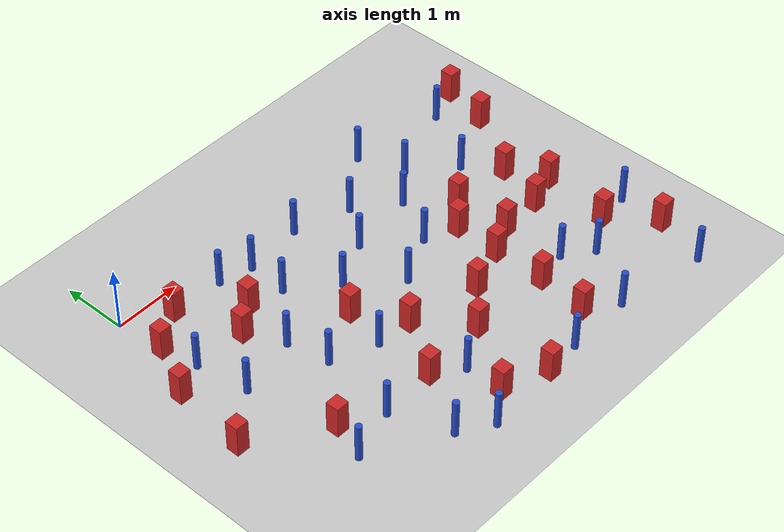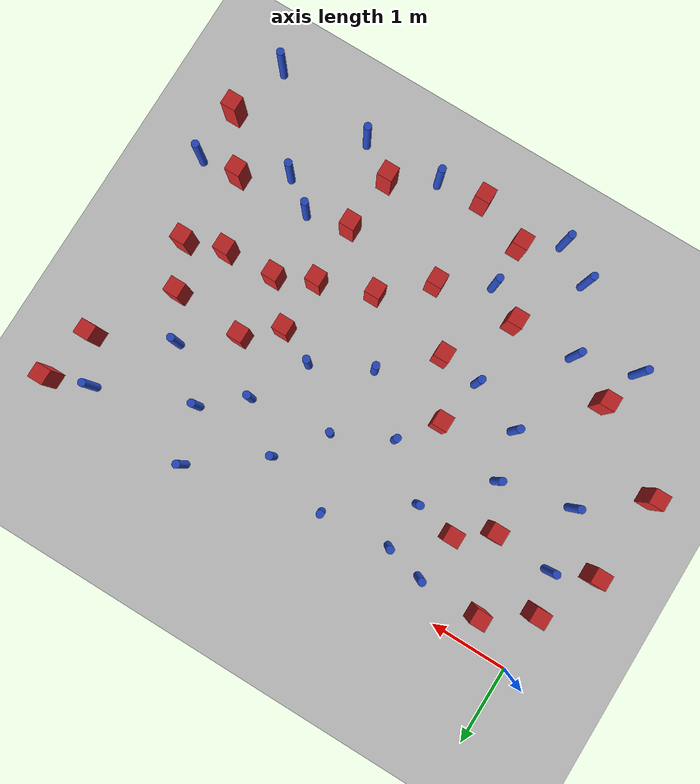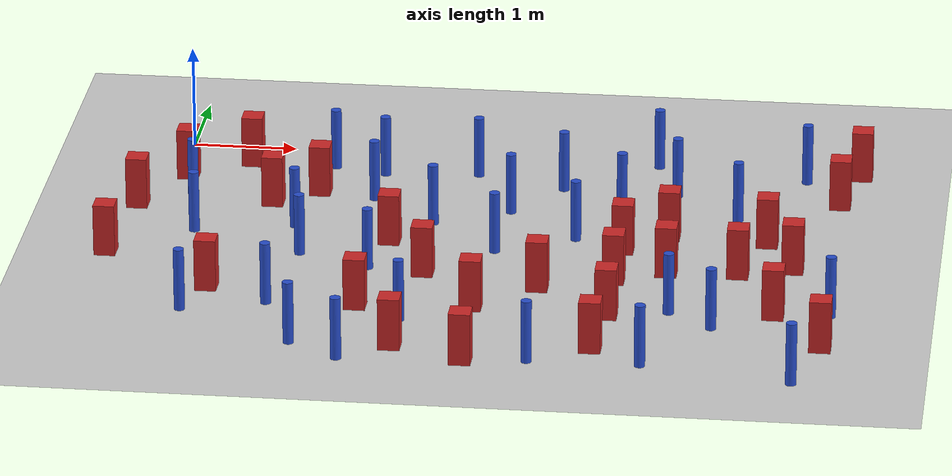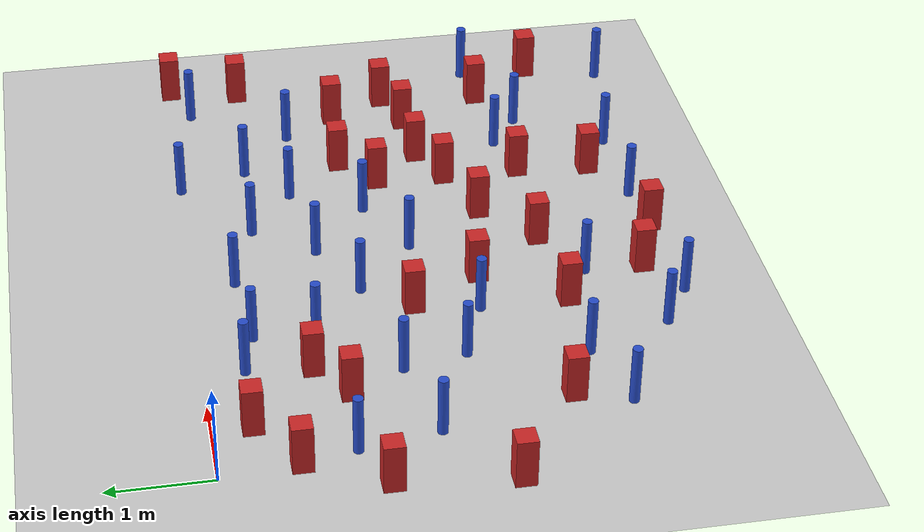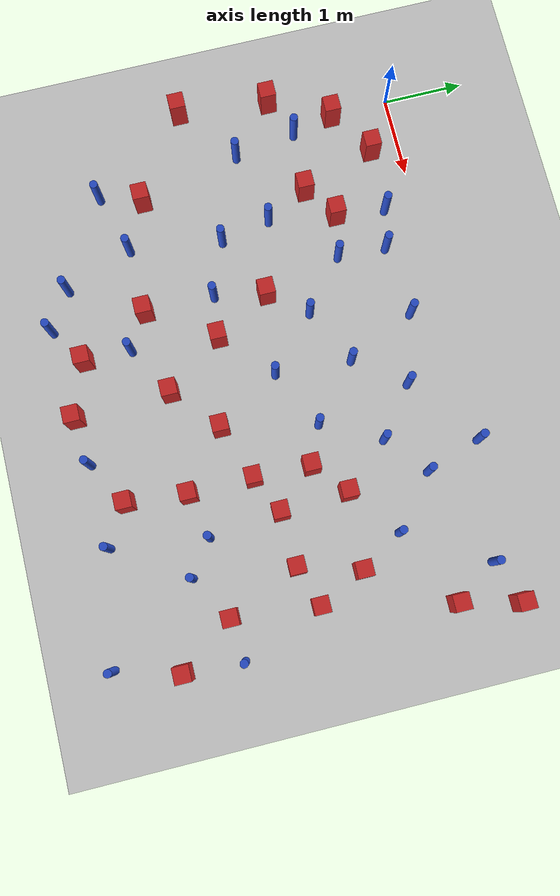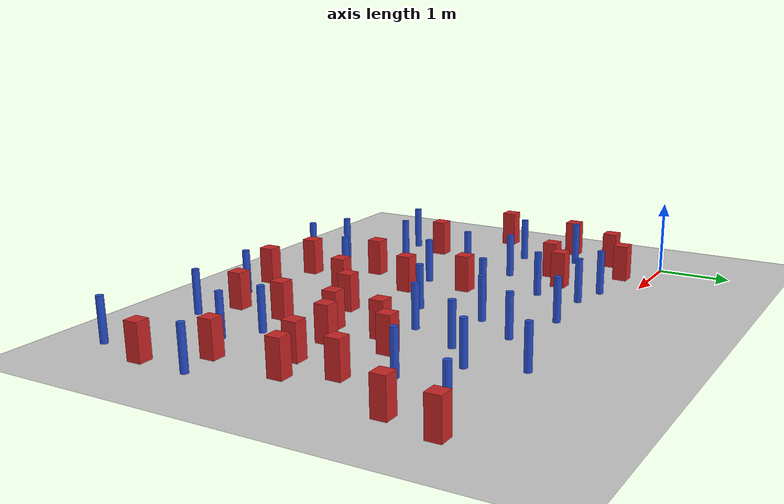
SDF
<sdf version="1.6">
 <world name="default">
  <model name="ground_plane">
   <static>1</static>
   <link name="link">
    <collision name="collision">
     <geometry><plane><normal>0 0 1</normal><size>100 100</size></plane></geometry>
     <surface><friction><ode><mu>100</mu><mu2>50</mu2></ode></friction></surface>
    </collision>
    <visual name="visual">
     <cast_shadows>0</cast_shadows>
     <geometry><plane><normal>0 0 1</normal><size>100 100</size></plane></geometry>
     <material>
      <ambient>1.0 1.0 1.0 1.0</ambient>
      <diffuse>0.8 0.8 0.8 1.0</diffuse>
      <specular>0.01 0.01 0.01 1.000000</specular>
     </material>
    </visual>
   </link>
  </model>
  <model name="NamedLocations">
   <static>true</static>
   <link name="DefaultStart"><pose>8.5 0 0 0 0 3.14</pose></link>
  </model>
  <model name="pole_obstacle2">
   <static>true</static>
   <pose>4.7720172906 -0.747344427278 7.38925637345e-09 -8.47170692799e-08 1.24976765038e-08 -1.74513093018e-07</pose>
   <link name="link">
    <pose>0 0 0.3 0 -0 0</pose>
    <inertial>
     <mass>1</mass>
     <inertia><ixx>0.145833</ixx><ixy>0</ixy><ixz>0</ixz><iyy>0.145833</iyy><iyz>0</iyz><izz>0.125</izz></inertia>
    </inertial>
    <collision name="collision">
     <geometry><cylinder><radius>0.05</radius><length>.6</length></cylinder></geometry>
    </collision>
    <visual name="visual">
     <geometry><cylinder><radius>0.05</radius><length>.6</length></cylinder></geometry>
     <material>
      <script><name>Gazebo/Blue</name><uri>file://media/materials/scripts/gazebo.material</uri></script>
     </material>
    </visual>
   </link>
  </model>
  <model name="square_post_obstacle18">
   <static>true</static>
   <pose>0.964357316819 -1.32385810969 1.91545236811e-07 -7.35059704564e-06 1.12565212e-07 2.39332434364e-05</pose>
   <link name="link">
    <pose>0 0 0.25 0 -0 0</pose>
    <inertial>
     <mass>100</mass>
     <inertia>
      <ixx>0.166667</ixx>
      <ixy>0</ixy>
      <ixz>0</ixz>
      <iyy>0.166667</iyy>
      <iyz>0</iyz>
      <izz>0.166667</izz>
     </inertia>
    </inertial>
    <collision name="collision"><geometry><box><size>.2 .2 .5</size></box></geometry></collision>
    <visual name="visual">
     <geometry><box><size>.2 .2 .5</size></box></geometry>
     <material>
      <script><name>Gazebo/Red</name><uri>file://media/materials/scripts/gazebo.material</uri></script>
     </material>
    </visual>
   </link>
  </model>
  <model name="square_post_obstacle19">
   <static>true</static>
   <pose>2.04800696063 -3.61474034839 1.91545236811e-07 -7.35059704564e-06 1.12565212e-07 2.39332434364e-05</pose>
   <link name="link">
    <pose>0 0 0.25 0 -0 0</pose>
    <inertial>
     <mass>100</mass>
     <inertia>
      <ixx>0.166667</ixx>
      <ixy>0</ixy>
      <ixz>0</ixz>
      <iyy>0.166667</iyy>
      <iyz>0</iyz>
      <izz>0.166667</izz>
     </inertia>
    </inertial>
    <collision name="collision"><geometry><box><size>.2 .2 .5</size></box></geometry></collision>
    <visual name="visual">
     <geometry><box><size>.2 .2 .5</size></box></geometry>
     <material>
      <script><name>Gazebo/Red</name><uri>file://media/materials/scripts/gazebo.material</uri></script>
     </material>
    </visual>
   </link>
  </model>
  <model name="pole_obstacle13">
   <static>true</static>
   <pose>4.75919211775 -4.63325182389 7.38925637345e-09 -8.47170692796e-08 1.24976764786e-08 -1.74513093032e-07</pose>
   <link name="link">
    <pose>0 0 0.3 0 -0 0</pose>
    <inertial>
     <mass>1</mass>
     <inertia><ixx>0.145833</ixx><ixy>0</ixy><ixz>0</ixz><iyy>0.145833</iyy><iyz>0</iyz><izz>0.125</izz></inertia>
    </inertial>
    <collision name="collision">
     <geometry><cylinder><radius>0.05</radius><length>.6</length></cylinder></geometry>
    </collision>
    <visual name="visual">
     <geometry><cylinder><radius>0.05</radius><length>.6</length></cylinder></geometry>
     <material>
      <script><name>Gazebo/Blue</name><uri>file://media/materials/scripts/gazebo.material</uri></script>
     </material>
    </visual>
   </link>
  </model>
  <model name="square_post_obstacle26">
   <static>true</static>
   <pose>4.37403866077 -2.09080189724 1.91545236811e-07 -7.35059704564e-06 1.12565212e-07 2.39332434364e-05</pose>
   <link name="link">
    <pose>0 0 0.25 0 -0 0</pose>
    <inertial>
     <mass>100</mass>
     <inertia>
      <ixx>0.166667</ixx>
      <ixy>0</ixy>
      <ixz>0</ixz>
      <iyy>0.166667</iyy>
      <iyz>0</iyz>
      <izz>0.166667</izz>
     </inertia>
    </inertial>
    <collision name="collision"><geometry><box><size>.2 .2 .5</size></box></geometry></collision>
    <visual name="visual">
     <geometry><box><size>.2 .2 .5</size></box></geometry>
     <material>
      <script><name>Gazebo/Red</name><uri>file://media/materials/scripts/gazebo.material</uri></script>
     </material>
    </visual>
   </link>
  </model>
  <model name="square_post_obstacle30">
   <static>true</static>
   <pose>3.66635060413 -3.0341679923 1.91545236811e-07 -7.35059704564e-06 1.12565212e-07 2.39332434364e-05</pose>
   <link name="link">
    <pose>0 0 0.25 0 -0 0</pose>
    <inertial>
     <mass>100</mass>
     <inertia>
      <ixx>0.166667</ixx>
      <ixy>0</ixy>
      <ixz>0</ixz>
      <iyy>0.166667</iyy>
      <iyz>0</iyz>
      <izz>0.166667</izz>
     </inertia>
    </inertial>
    <collision name="collision"><geometry><box><size>.2 .2 .5</size></box></geometry></collision>
    <visual name="visual">
     <geometry><box><size>.2 .2 .5</size></box></geometry>
     <material>
      <script><name>Gazebo/Red</name><uri>file://media/materials/scripts/gazebo.material</uri></script>
     </material>
    </visual>
   </link>
  </model>
  <model name="pole_obstacle24">
   <static>true</static>
   <pose>3.23512603943 -1.30030228851 7.38925637345e-09 -8.471706928e-08 1.24976765152e-08 -1.74513093012e-07</pose>
   <link name="link">
    <pose>0 0 0.3 0 -0 0</pose>
    <inertial>
     <mass>1</mass>
     <inertia><ixx>0.145833</ixx><ixy>0</ixy><ixz>0</ixz><iyy>0.145833</iyy><iyz>0</iyz><izz>0.125</izz></inertia>
    </inertial>
    <collision name="collision">
     <geometry><cylinder><radius>0.05</radius><length>.6</length></cylinder></geometry>
    </collision>
    <visual name="visual">
     <geometry><cylinder><radius>0.05</radius><length>.6</length></cylinder></geometry>
     <material>
      <script><name>Gazebo/Blue</name><uri>file://media/materials/scripts/gazebo.material</uri></script>
     </material>
    </visual>
   </link>
  </model>
  <model name="pole_obstacle28">
   <static>true</static>
   <pose>1.93992429801 -0.521464365746 7.38925637345e-09 -8.47170692799e-08 1.24976765025e-08 -1.7451309302e-07</pose>
   <link name="link">
    <pose>0 0 0.3 0 -0 0</pose>
    <inertial>
     <mass>1</mass>
     <inertia><ixx>0.145833</ixx><ixy>0</ixy><ixz>0</ixz><iyy>0.145833</iyy><iyz>0</iyz><izz>0.125</izz></inertia>
    </inertial>
    <collision name="collision">
     <geometry><cylinder><radius>0.05</radius><length>.6</length></cylinder></geometry>
    </collision>
    <visual name="visual">
     <geometry><cylinder><radius>0.05</radius><length>.6</length></cylinder></geometry>
     <material>
      <script><name>Gazebo/Blue</name><uri>file://media/materials/scripts/gazebo.material</uri></script>
     </material>
    </visual>
   </link>
  </model>
  <model name="pole_obstacle29">
   <static>true</static>
   <pose>4.54024770838 -0.0614393843138 7.38925637345e-09 -8.47170692799e-08 1.24976765036e-08 -1.7451309302e-07</pose>
   <link name="link">
    <pose>0 0 0.3 0 -0 0</pose>
    <inertial>
     <mass>1</mass>
     <inertia><ixx>0.145833</ixx><ixy>0</ixy><ixz>0</ixz><iyy>0.145833</iyy><iyz>0</iyz><izz>0.125</izz></inertia>
    </inertial>
    <collision name="collision">
     <geometry><cylinder><radius>0.05</radius><length>.6</length></cylinder></geometry>
    </collision>
    <visual name="visual">
     <geometry><cylinder><radius>0.05</radius><length>.6</length></cylinder></geometry>
     <material>
      <script><name>Gazebo/Blue</name><uri>file://media/materials/scripts/gazebo.material</uri></script>
     </material>
    </visual>
   </link>
  </model>
  <model name="pole_obstacle32">
   <static>true</static>
   <pose>5.33008297915 -3.7586670576 7.38925637345e-09 -8.47170692798e-08 1.24976764937e-08 -1.74513093023e-07</pose>
   <link name="link">
    <pose>0 0 0.3 0 -0 0</pose>
    <inertial>
     <mass>1</mass>
     <inertia><ixx>0.145833</ixx><ixy>0</ixy><ixz>0</ixz><iyy>0.145833</iyy><iyz>0</iyz><izz>0.125</izz></inertia>
    </inertial>
    <collision name="collision">
     <geometry><cylinder><radius>0.05</radius><length>.6</length></cylinder></geometry>
    </collision>
    <visual name="visual">
     <geometry><cylinder><radius>0.05</radius><length>.6</length></cylinder></geometry>
     <material>
      <script><name>Gazebo/Blue</name><uri>file://media/materials/scripts/gazebo.material</uri></script>
     </material>
    </visual>
   </link>
  </model>
  <model name="pole_obstacle38">
   <static>true</static>
   <pose>2.02434232337 -4.7736321832 7.38925637345e-09 -8.47170692799e-08 1.24976765014e-08 -1.7451309302e-07</pose>
   <link name="link">
    <pose>0 0 0.3 0 -0 0</pose>
    <inertial>
     <mass>1</mass>
     <inertia><ixx>0.145833</ixx><ixy>0</ixy><ixz>0</ixz><iyy>0.145833</iyy><iyz>0</iyz><izz>0.125</izz></inertia>
    </inertial>
    <collision name="collision">
     <geometry><cylinder><radius>0.05</radius><length>.6</length></cylinder></geometry>
    </collision>
    <visual name="visual">
     <geometry><cylinder><radius>0.05</radius><length>.6</length></cylinder></geometry>
     <material>
      <script><name>Gazebo/Blue</name><uri>file://media/materials/scripts/gazebo.material</uri></script>
     </material>
    </visual>
   </link>
  </model>
  <model name="pole_obstacle42">
   <static>true</static>
   <pose>0.456989577449 -3.85813906837 7.38925637345e-09 -8.471706928e-08 1.24976765089e-08 -1.74513093016e-07</pose>
   <link name="link">
    <pose>0 0 0.3 0 -0 0</pose>
    <inertial>
     <mass>1</mass>
     <inertia><ixx>0.145833</ixx><ixy>0</ixy><ixz>0</ixz><iyy>0.145833</iyy><iyz>0</iyz><izz>0.125</izz></inertia>
    </inertial>
    <collision name="collision">
     <geometry><cylinder><radius>0.05</radius><length>.6</length></cylinder></geometry>
    </collision>
    <visual name="visual">
     <geometry><cylinder><radius>0.05</radius><length>.6</length></cylinder></geometry>
     <material>
      <script><name>Gazebo/Blue</name><uri>file://media/materials/scripts/gazebo.material</uri></script>
     </material>
    </visual>
   </link>
  </model>
  <model name="pole_obstacle47">
   <static>true</static>
   <pose>3.68034319505 -0.705572303141 7.38925637345e-09 -8.471706928e-08 1.24976765177e-08 -1.74513093012e-07</pose>
   <link name="link">
    <pose>0 0 0.3 0 -0 0</pose>
    <inertial>
     <mass>1</mass>
     <inertia><ixx>0.145833</ixx><ixy>0</ixy><ixz>0</ixz><iyy>0.145833</iyy><iyz>0</iyz><izz>0.125</izz></inertia>
    </inertial>
    <collision name="collision">
     <geometry><cylinder><radius>0.05</radius><length>.6</length></cylinder></geometry>
    </collision>
    <visual name="visual">
     <geometry><cylinder><radius>0.05</radius><length>.6</length></cylinder></geometry>
     <material>
      <script><name>Gazebo/Blue</name><uri>file://media/materials/scripts/gazebo.material</uri></script>
     </material>
    </visual>
   </link>
  </model>
  <model name="square_post_obstacle49">
   <static>true</static>
   <pose>5.48485949654 -2.54299438803 1.91545236811e-07 -7.35059704564e-06 1.12565212e-07 2.39332434364e-05</pose>
   <link name="link">
    <pose>0 0 0.25 0 -0 0</pose>
    <inertial>
     <mass>100</mass>
     <inertia>
      <ixx>0.166667</ixx>
      <ixy>0</ixy>
      <ixz>0</ixz>
      <iyy>0.166667</iyy>
      <iyz>0</iyz>
      <izz>0.166667</izz>
     </inertia>
    </inertial>
    <collision name="collision"><geometry><box><size>.2 .2 .5</size></box></geometry></collision>
    <visual name="visual">
     <geometry><box><size>.2 .2 .5</size></box></geometry>
     <material>
      <script><name>Gazebo/Red</name><uri>file://media/materials/scripts/gazebo.material</uri></script>
     </material>
    </visual>
   </link>
  </model>
  <model name="pole_obstacle53">
   <static>true</static>
   <pose>1.91021200987 -1.12741081636 7.38925637345e-09 -8.471706928e-08 1.24976765079e-08 -1.74513093017e-07</pose>
   <link name="link">
    <pose>0 0 0.3 0 -0 0</pose>
    <inertial>
     <mass>1</mass>
     <inertia><ixx>0.145833</ixx><ixy>0</ixy><ixz>0</ixz><iyy>0.145833</iyy><iyz>0</iyz><izz>0.125</izz></inertia>
    </inertial>
    <collision name="collision">
     <geometry><cylinder><radius>0.05</radius><length>.6</length></cylinder></geometry>
    </collision>
    <visual name="visual">
     <geometry><cylinder><radius>0.05</radius><length>.6</length></cylinder></geometry>
     <material>
      <script><name>Gazebo/Blue</name><uri>file://media/materials/scripts/gazebo.material</uri></script>
     </material>
    </visual>
   </link>
  </model>
  <model name="square_post_obstacle57">
   <static>true</static>
   <pose>4.77906707636 -1.7390245978 1.91545236811e-07 -7.35059704564e-06 1.12565212e-07 2.39332434364e-05</pose>
   <link name="link">
    <pose>0 0 0.25 0 -0 0</pose>
    <inertial>
     <mass>100</mass>
     <inertia>
      <ixx>0.166667</ixx>
      <ixy>0</ixy>
      <ixz>0</ixz>
      <iyy>0.166667</iyy>
      <iyz>0</iyz>
      <izz>0.166667</izz>
     </inertia>
    </inertial>
    <collision name="collision"><geometry><box><size>.2 .2 .5</size></box></geometry></collision>
    <visual name="visual">
     <geometry><box><size>.2 .2 .5</size></box></geometry>
     <material>
      <script><name>Gazebo/Red</name><uri>file://media/materials/scripts/gazebo.material</uri></script>
     </material>
    </visual>
   </link>
  </model>
  <model name="pole_obstacle55">
   <static>true</static>
   <pose>0.315749615218 -2.05587042817 7.38925637345e-09 -8.471706928e-08 1.24976765084e-08 -1.74513093017e-07</pose>
   <link name="link">
    <pose>0 0 0.3 0 -0 0</pose>
    <inertial>
     <mass>1</mass>
     <inertia><ixx>0.145833</ixx><ixy>0</ixy><ixz>0</ixz><iyy>0.145833</iyy><iyz>0</iyz><izz>0.125</izz></inertia>
    </inertial>
    <collision name="collision">
     <geometry><cylinder><radius>0.05</radius><length>.6</length></cylinder></geometry>
    </collision>
    <visual name="visual">
     <geometry><cylinder><radius>0.05</radius><length>.6</length></cylinder></geometry>
     <material>
      <script><name>Gazebo/Blue</name><uri>file://media/materials/scripts/gazebo.material</uri></script>
     </material>
    </visual>
   </link>
  </model>
  <model name="pole_obstacle56">
   <static>true</static>
   <pose>4.91783295922 -3.45816754562 7.38925637345e-09 -8.47170692798e-08 1.24976764937e-08 -1.74513093023e-07</pose>
   <link name="link">
    <pose>0 0 0.3 0 -0 0</pose>
    <inertial>
     <mass>1</mass>
     <inertia><ixx>0.145833</ixx><ixy>0</ixy><ixz>0</ixz><iyy>0.145833</iyy><iyz>0</iyz><izz>0.125</izz></inertia>
    </inertial>
    <collision name="collision">
     <geometry><cylinder><radius>0.05</radius><length>.6</length></cylinder></geometry>
    </collision>
    <visual name="visual">
     <geometry><cylinder><radius>0.05</radius><length>.6</length></cylinder></geometry>
     <material>
      <script><name>Gazebo/Blue</name><uri>file://media/materials/scripts/gazebo.material</uri></script>
     </material>
    </visual>
   </link>
  </model>
  <model name="square_post_obstacle63">
   <static>true</static>
   <pose>5.87396929325 -3.42659135296 1.91545236811e-07 -7.35059704564e-06 1.12565212e-07 2.39332434364e-05</pose>
   <link name="link">
    <pose>0 0 0.25 0 -0 0</pose>
    <inertial>
     <mass>100</mass>
     <inertia>
      <ixx>0.166667</ixx>
      <ixy>0</ixy>
      <ixz>0</ixz>
      <iyy>0.166667</iyy>
      <iyz>0</iyz>
      <izz>0.166667</izz>
     </inertia>
    </inertial>
    <collision name="collision"><geometry><box><size>.2 .2 .5</size></box></geometry></collision>
    <visual name="visual">
     <geometry><box><size>.2 .2 .5</size></box></geometry>
     <material>
      <script><name>Gazebo/Red</name><uri>file://media/materials/scripts/gazebo.material</uri></script>
     </material>
    </visual>
   </link>
  </model>
  <model name="pole_obstacle61">
   <static>true</static>
   <pose>6.136204802 -4.8713466097 7.38925637345e-09 -8.47170692796e-08 1.24976764786e-08 -1.74513093032e-07</pose>
   <link name="link">
    <pose>0 0 0.3 0 -0 0</pose>
    <inertial>
     <mass>1</mass>
     <inertia><ixx>0.145833</ixx><ixy>0</ixy><ixz>0</ixz><iyy>0.145833</iyy><iyz>0</iyz><izz>0.125</izz></inertia>
    </inertial>
    <collision name="collision">
     <geometry><cylinder><radius>0.05</radius><length>.6</length></cylinder></geometry>
    </collision>
    <visual name="visual">
     <geometry><cylinder><radius>0.05</radius><length>.6</length></cylinder></geometry>
     <material>
      <script><name>Gazebo/Blue</name><uri>file://media/materials/scripts/gazebo.material</uri></script>
     </material>
    </visual>
   </link>
  </model>
  <model name="square_post_obstacle64">
   <static>true</static>
   <pose>3.14669188082 -4.71209867936 1.91545236811e-07 -7.35059704564e-06 1.12565212e-07 2.39332434364e-05</pose>
   <link name="link">
    <pose>0 0 0.25 0 -0 0</pose>
    <inertial>
     <mass>100</mass>
     <inertia>
      <ixx>0.166667</ixx>
      <ixy>0</ixy>
      <ixz>0</ixz>
      <iyy>0.166667</iyy>
      <iyz>0</iyz>
      <izz>0.166667</izz>
     </inertia>
    </inertial>
    <collision name="collision"><geometry><box><size>.2 .2 .5</size></box></geometry></collision>
    <visual name="visual">
     <geometry><box><size>.2 .2 .5</size></box></geometry>
     <material>
      <script><name>Gazebo/Red</name><uri>file://media/materials/scripts/gazebo.material</uri></script>
     </material>
    </visual>
   </link>
  </model>
  <model name="square_post_obstacle66">
   <static>true</static>
   <pose>5.98414200964 -2.37964871967 1.91545236811e-07 -7.35059704564e-06 1.12565212e-07 2.39332434364e-05</pose>
   <link name="link">
    <pose>0 0 0.25 0 -0 0</pose>
    <inertial>
     <mass>100</mass>
     <inertia>
      <ixx>0.166667</ixx>
      <ixy>0</ixy>
      <ixz>0</ixz>
      <iyy>0.166667</iyy>
      <iyz>0</iyz>
      <izz>0.166667</izz>
     </inertia>
    </inertial>
    <collision name="collision"><geometry><box><size>.2 .2 .5</size></box></geometry></collision>
    <visual name="visual">
     <geometry><box><size>.2 .2 .5</size></box></geometry>
     <material>
      <script><name>Gazebo/Red</name><uri>file://media/materials/scripts/gazebo.material</uri></script>
     </material>
    </visual>
   </link>
  </model>
  <model name="square_post_obstacle82">
   <static>true</static>
   <pose>-0.430390913188 -2.63914386739 1.91545236811e-07 -7.35059704564e-06 1.12565212e-07 2.39332434364e-05</pose>
   <link name="link">
    <pose>0 0 0.25 0 -0 0</pose>
    <inertial>
     <mass>100</mass>
     <inertia>
      <ixx>0.166667</ixx>
      <ixy>0</ixy>
      <ixz>0</ixz>
      <iyy>0.166667</iyy>
      <iyz>0</iyz>
      <izz>0.166667</izz>
     </inertia>
    </inertial>
    <collision name="collision"><geometry><box><size>.2 .2 .5</size></box></geometry></collision>
    <visual name="visual">
     <geometry><box><size>.2 .2 .5</size></box></geometry>
     <material>
      <script><name>Gazebo/Red</name><uri>file://media/materials/scripts/gazebo.material</uri></script>
     </material>
    </visual>
   </link>
  </model>
  <model name="pole_obstacle90">
   <static>true</static>
   <pose>1.2218041511 -3.63251959866 7.38925637345e-09 -8.47170692799e-08 1.24976765053e-08 -1.74513093017e-07</pose>
   <link name="link">
    <pose>0 0 0.3 0 -0 0</pose>
    <inertial>
     <mass>1</mass>
     <inertia><ixx>0.145833</ixx><ixy>0</ixy><ixz>0</ixz><iyy>0.145833</iyy><iyz>0</iyz><izz>0.125</izz></inertia>
    </inertial>
    <collision name="collision">
     <geometry><cylinder><radius>0.05</radius><length>.6</length></cylinder></geometry>
    </collision>
    <visual name="visual">
     <geometry><cylinder><radius>0.05</radius><length>.6</length></cylinder></geometry>
     <material>
      <script><name>Gazebo/Blue</name><uri>file://media/materials/scripts/gazebo.material</uri></script>
     </material>
    </visual>
   </link>
  </model>
  <model name="pole_obstacle107">
   <static>true</static>
   <pose>2.48337361602 -3.88060317292 7.38925637345e-09 -8.47170692798e-08 1.24976764939e-08 -1.74513093025e-07</pose>
   <link name="link">
    <pose>0 0 0.3 0 -0 0</pose>
    <inertial>
     <mass>1</mass>
     <inertia><ixx>0.145833</ixx><ixy>0</ixy><ixz>0</ixz><iyy>0.145833</iyy><iyz>0</iyz><izz>0.125</izz></inertia>
    </inertial>
    <collision name="collision">
     <geometry><cylinder><radius>0.05</radius><length>.6</length></cylinder></geometry>
    </collision>
    <visual name="visual">
     <geometry><cylinder><radius>0.05</radius><length>.6</length></cylinder></geometry>
     <material>
      <script><name>Gazebo/Blue</name><uri>file://media/materials/scripts/gazebo.material</uri></script>
     </material>
    </visual>
   </link>
  </model>
  <model name="pole_obstacle109">
   <static>true</static>
   <pose>1.37649687885 -2.48330966626 7.38925637345e-09 -8.47170692799e-08 1.24976765053e-08 -1.74513093017e-07</pose>
   <link name="link">
    <pose>0 0 0.3 0 -0 0</pose>
    <inertial>
     <mass>1</mass>
     <inertia><ixx>0.145833</ixx><ixy>0</ixy><ixz>0</ixz><iyy>0.145833</iyy><iyz>0</iyz><izz>0.125</izz></inertia>
    </inertial>
    <collision name="collision">
     <geometry><cylinder><radius>0.05</radius><length>.6</length></cylinder></geometry>
    </collision>
    <visual name="visual">
     <geometry><cylinder><radius>0.05</radius><length>.6</length></cylinder></geometry>
     <material>
      <script><name>Gazebo/Blue</name><uri>file://media/materials/scripts/gazebo.material</uri></script>
     </material>
    </visual>
   </link>
  </model>
  <model name="pole_obstacle114">
   <static>true</static>
   <pose>3.90838478968 -1.87798231342 7.38925637345e-09 -8.471706928e-08 1.24976765152e-08 -1.74513093012e-07</pose>
   <link name="link">
    <pose>0 0 0.3 0 -0 0</pose>
    <inertial>
     <mass>1</mass>
     <inertia><ixx>0.145833</ixx><ixy>0</ixy><ixz>0</ixz><iyy>0.145833</iyy><iyz>0</iyz><izz>0.125</izz></inertia>
    </inertial>
    <collision name="collision">
     <geometry><cylinder><radius>0.05</radius><length>.6</length></cylinder></geometry>
    </collision>
    <visual name="visual">
     <geometry><cylinder><radius>0.05</radius><length>.6</length></cylinder></geometry>
     <material>
      <script><name>Gazebo/Blue</name><uri>file://media/materials/scripts/gazebo.material</uri></script>
     </material>
    </visual>
   </link>
  </model>
  <model name="square_post_obstacle102">
   <static>true</static>
   <pose>4.28359220357 -4.33054083709 1.91545236811e-07 -7.35059704564e-06 1.12565212e-07 2.39332434364e-05</pose>
   <link name="link">
    <pose>0 0 0.25 0 -0 0</pose>
    <inertial>
     <mass>100</mass>
     <inertia>
      <ixx>0.166667</ixx>
      <ixy>0</ixy>
      <ixz>0</ixz>
      <iyy>0.166667</iyy>
      <iyz>0</iyz>
      <izz>0.166667</izz>
     </inertia>
    </inertial>
    <collision name="collision"><geometry><box><size>.2 .2 .5</size></box></geometry></collision>
    <visual name="visual">
     <geometry><box><size>.2 .2 .5</size></box></geometry>
     <material>
      <script><name>Gazebo/Red</name><uri>file://media/materials/scripts/gazebo.material</uri></script>
     </material>
    </visual>
   </link>
  </model>
  <model name="pole_obstacle120">
   <static>true</static>
   <pose>2.53347330655 -1.64703832166 7.38925637345e-09 -8.471706928e-08 1.24976765152e-08 -1.74513093012e-07</pose>
   <link name="link">
    <pose>0 0 0.3 0 -0 0</pose>
    <inertial>
     <mass>1</mass>
     <inertia><ixx>0.145833</ixx><ixy>0</ixy><ixz>0</ixz><iyy>0.145833</iyy><iyz>0</iyz><izz>0.125</izz></inertia>
    </inertial>
    <collision name="collision">
     <geometry><cylinder><radius>0.05</radius><length>.6</length></cylinder></geometry>
    </collision>
    <visual name="visual">
     <geometry><cylinder><radius>0.05</radius><length>.6</length></cylinder></geometry>
     <material>
      <script><name>Gazebo/Blue</name><uri>file://media/materials/scripts/gazebo.material</uri></script>
     </material>
    </visual>
   </link>
  </model>
  <model name="square_post_obstacle113">
   <static>true</static>
   <pose>4.82162857818 -2.57438693479 1.91545236811e-07 -7.35059704564e-06 1.12565212e-07 2.39332434364e-05</pose>
   <link name="link">
    <pose>0 0 0.25 0 -0 0</pose>
    <inertial>
     <mass>100</mass>
     <inertia>
      <ixx>0.166667</ixx>
      <ixy>0</ixy>
      <ixz>0</ixz>
      <iyy>0.166667</iyy>
      <iyz>0</iyz>
      <izz>0.166667</izz>
     </inertia>
    </inertial>
    <collision name="collision"><geometry><box><size>.2 .2 .5</size></box></geometry></collision>
    <visual name="visual">
     <geometry><box><size>.2 .2 .5</size></box></geometry>
     <material>
      <script><name>Gazebo/Red</name><uri>file://media/materials/scripts/gazebo.material</uri></script>
     </material>
    </visual>
   </link>
  </model>
  <model name="pole_obstacle136">
   <static>true</static>
   <pose>1.44638753216 -0.400247691157 7.38925637345e-09 -8.47170692799e-08 1.24976765065e-08 -1.74513093017e-07</pose>
   <link name="link">
    <pose>0 0 0.3 0 -0 0</pose>
    <inertial>
     <mass>1</mass>
     <inertia><ixx>0.145833</ixx><ixy>0</ixy><ixz>0</ixz><iyy>0.145833</iyy><iyz>0</iyz><izz>0.125</izz></inertia>
    </inertial>
    <collision name="collision">
     <geometry><cylinder><radius>0.05</radius><length>.6</length></cylinder></geometry>
    </collision>
    <visual name="visual">
     <geometry><cylinder><radius>0.05</radius><length>.6</length></cylinder></geometry>
     <material>
      <script><name>Gazebo/Blue</name><uri>file://media/materials/scripts/gazebo.material</uri></script>
     </material>
    </visual>
   </link>
  </model>
  <model name="pole_obstacle137">
   <static>true</static>
   <pose>5.38934709878 -1.26751750336 7.38925637345e-09 -8.471706928e-08 1.24976765134e-08 -1.74513093015e-07</pose>
   <link name="link">
    <pose>0 0 0.3 0 -0 0</pose>
    <inertial>
     <mass>1</mass>
     <inertia><ixx>0.145833</ixx><ixy>0</ixy><ixz>0</ixz><iyy>0.145833</iyy><iyz>0</iyz><izz>0.125</izz></inertia>
    </inertial>
    <collision name="collision">
     <geometry><cylinder><radius>0.05</radius><length>.6</length></cylinder></geometry>
    </collision>
    <visual name="visual">
     <geometry><cylinder><radius>0.05</radius><length>.6</length></cylinder></geometry>
     <material>
      <script><name>Gazebo/Blue</name><uri>file://media/materials/scripts/gazebo.material</uri></script>
     </material>
    </visual>
   </link>
  </model>
  <model name="square_post_obstacle122">
   <static>true</static>
   <pose>4.35836527985 -3.58359406662 1.91545236811e-07 -7.35059704564e-06 1.12565212e-07 2.39332434364e-05</pose>
   <link name="link">
    <pose>0 0 0.25 0 -0 0</pose>
    <inertial>
     <mass>100</mass>
     <inertia>
      <ixx>0.166667</ixx>
      <ixy>0</ixy>
      <ixz>0</ixz>
      <iyy>0.166667</iyy>
      <iyz>0</iyz>
      <izz>0.166667</izz>
     </inertia>
    </inertial>
    <collision name="collision"><geometry><box><size>.2 .2 .5</size></box></geometry></collision>
    <visual name="visual">
     <geometry><box><size>.2 .2 .5</size></box></geometry>
     <material>
      <script><name>Gazebo/Red</name><uri>file://media/materials/scripts/gazebo.material</uri></script>
     </material>
    </visual>
   </link>
  </model>
  <model name="square_post_obstacle123">
   <static>true</static>
   <pose>1.37726648181 -1.02395138855 1.91545236811e-07 -7.35059704564e-06 1.12565212e-07 2.39332434364e-05</pose>
   <link name="link">
    <pose>0 0 0.25 0 -0 0</pose>
    <inertial>
     <mass>100</mass>
     <inertia>
      <ixx>0.166667</ixx>
      <ixy>0</ixy>
      <ixz>0</ixz>
      <iyy>0.166667</iyy>
      <iyz>0</iyz>
      <izz>0.166667</izz>
     </inertia>
    </inertial>
    <collision name="collision"><geometry><box><size>.2 .2 .5</size></box></geometry></collision>
    <visual name="visual">
     <geometry><box><size>.2 .2 .5</size></box></geometry>
     <material>
      <script><name>Gazebo/Red</name><uri>file://media/materials/scripts/gazebo.material</uri></script>
     </material>
    </visual>
   </link>
  </model>
  <model name="pole_obstacle148">
   <static>true</static>
   <pose>1.24654280838 -1.85690448418 7.38925637345e-09 -8.471706928e-08 1.24976765079e-08 -1.74513093017e-07</pose>
   <link name="link">
    <pose>0 0 0.3 0 -0 0</pose>
    <inertial>
     <mass>1</mass>
     <inertia><ixx>0.145833</ixx><ixy>0</ixy><ixz>0</ixz><iyy>0.145833</iyy><iyz>0</iyz><izz>0.125</izz></inertia>
    </inertial>
    <collision name="collision">
     <geometry><cylinder><radius>0.05</radius><length>.6</length></cylinder></geometry>
    </collision>
    <visual name="visual">
     <geometry><cylinder><radius>0.05</radius><length>.6</length></cylinder></geometry>
     <material>
      <script><name>Gazebo/Blue</name><uri>file://media/materials/scripts/gazebo.material</uri></script>
     </material>
    </visual>
   </link>
  </model>
  <model name="square_post_obstacle139">
   <static>true</static>
   <pose>0.634341823345 -0.380374716755 1.91545236811e-07 -7.35059704564e-06 1.12565212e-07 2.39332434364e-05</pose>
   <link name="link">
    <pose>0 0 0.25 0 -0 0</pose>
    <inertial>
     <mass>100</mass>
     <inertia>
      <ixx>0.166667</ixx>
      <ixy>0</ixy>
      <ixz>0</ixz>
      <iyy>0.166667</iyy>
      <iyz>0</iyz>
      <izz>0.166667</izz>
     </inertia>
    </inertial>
    <collision name="collision"><geometry><box><size>.2 .2 .5</size></box></geometry></collision>
    <visual name="visual">
     <geometry><box><size>.2 .2 .5</size></box></geometry>
     <material>
      <script><name>Gazebo/Red</name><uri>file://media/materials/scripts/gazebo.material</uri></script>
     </material>
    </visual>
   </link>
  </model>
  <model name="square_post_obstacle140">
   <static>true</static>
   <pose>6.32922601434 -0.820510667018 1.91545236811e-07 -7.35059704564e-06 1.12565212e-07 2.39332434364e-05</pose>
   <link name="link">
    <pose>0 0 0.25 0 -0 0</pose>
    <inertial>
     <mass>100</mass>
     <inertia>
      <ixx>0.166667</ixx>
      <ixy>0</ixy>
      <ixz>0</ixz>
      <iyy>0.166667</iyy>
      <iyz>0</iyz>
      <izz>0.166667</izz>
     </inertia>
    </inertial>
    <collision name="collision"><geometry><box><size>.2 .2 .5</size></box></geometry></collision>
    <visual name="visual">
     <geometry><box><size>.2 .2 .5</size></box></geometry>
     <material>
      <script><name>Gazebo/Red</name><uri>file://media/materials/scripts/gazebo.material</uri></script>
     </material>
    </visual>
   </link>
  </model>
  <model name="square_post_obstacle141">
   <static>true</static>
   <pose>2.57478824587 -2.81062413524 1.91545236811e-07 -7.35059704564e-06 1.12565212e-07 2.39332434364e-05</pose>
   <link name="link">
    <pose>0 0 0.25 0 -0 0</pose>
    <inertial>
     <mass>100</mass>
     <inertia>
      <ixx>0.166667</ixx>
      <ixy>0</ixy>
      <ixz>0</ixz>
      <iyy>0.166667</iyy>
      <iyz>0</iyz>
      <izz>0.166667</izz>
     </inertia>
    </inertial>
    <collision name="collision"><geometry><box><size>.2 .2 .5</size></box></geometry></collision>
    <visual name="visual">
     <geometry><box><size>.2 .2 .5</size></box></geometry>
     <material>
      <script><name>Gazebo/Red</name><uri>file://media/materials/scripts/gazebo.material</uri></script>
     </material>
    </visual>
   </link>
  </model>
  <model name="square_post_obstacle150">
   <static>true</static>
   <pose>6.34771378251 -4.08891313494 1.91545236811e-07 -7.35059704564e-06 1.12565212e-07 2.39332434364e-05</pose>
   <link name="link">
    <pose>0 0 0.25 0 -0 0</pose>
    <inertial>
     <mass>100</mass>
     <inertia>
      <ixx>0.166667</ixx>
      <ixy>0</ixy>
      <ixz>0</ixz>
      <iyy>0.166667</iyy>
      <iyz>0</iyz>
      <izz>0.166667</izz>
     </inertia>
    </inertial>
    <collision name="collision"><geometry><box><size>.2 .2 .5</size></box></geometry></collision>
    <visual name="visual">
     <geometry><box><size>.2 .2 .5</size></box></geometry>
     <material>
      <script><name>Gazebo/Red</name><uri>file://media/materials/scripts/gazebo.material</uri></script>
     </material>
    </visual>
   </link>
  </model>
  <model name="pole_obstacle165">
   <static>true</static>
   <pose>0.185435409773 -1.27251816378 7.38925637345e-09 -8.471706928e-08 1.24976765082e-08 -1.74513093016e-07</pose>
   <link name="link">
    <pose>0 0 0.3 0 -0 0</pose>
    <inertial>
     <mass>1</mass>
     <inertia><ixx>0.145833</ixx><ixy>0</ixy><ixz>0</ixz><iyy>0.145833</iyy><iyz>0</iyz><izz>0.125</izz></inertia>
    </inertial>
    <collision name="collision">
     <geometry><cylinder><radius>0.05</radius><length>.6</length></cylinder></geometry>
    </collision>
    <visual name="visual">
     <geometry><cylinder><radius>0.05</radius><length>.6</length></cylinder></geometry>
     <material>
      <script><name>Gazebo/Blue</name><uri>file://media/materials/scripts/gazebo.material</uri></script>
     </material>
    </visual>
   </link>
  </model>
  <model name="pole_obstacle172">
   <static>true</static>
   <pose>3.18106990867 -2.23899113617 7.38925637345e-09 -8.47170692798e-08 1.24976764939e-08 -1.74513093025e-07</pose>
   <link name="link">
    <pose>0 0 0.3 0 -0 0</pose>
    <inertial>
     <mass>1</mass>
     <inertia><ixx>0.145833</ixx><ixy>0</ixy><ixz>0</ixz><iyy>0.145833</iyy><iyz>0</iyz><izz>0.125</izz></inertia>
    </inertial>
    <collision name="collision">
     <geometry><cylinder><radius>0.05</radius><length>.6</length></cylinder></geometry>
    </collision>
    <visual name="visual">
     <geometry><cylinder><radius>0.05</radius><length>.6</length></cylinder></geometry>
     <material>
      <script><name>Gazebo/Blue</name><uri>file://media/materials/scripts/gazebo.material</uri></script>
     </material>
    </visual>
   </link>
  </model>
  <model name="pole_obstacle177">
   <static>true</static>
   <pose>4.27743006734 -1.16291274781 7.38925637345e-09 -8.471706928e-08 1.24976765134e-08 -1.74513093015e-07</pose>
   <link name="link">
    <pose>0 0 0.3 0 -0 0</pose>
    <inertial>
     <mass>1</mass>
     <inertia><ixx>0.145833</ixx><ixy>0</ixy><ixz>0</ixz><iyy>0.145833</iyy><iyz>0</iyz><izz>0.125</izz></inertia>
    </inertial>
    <collision name="collision">
     <geometry><cylinder><radius>0.05</radius><length>.6</length></cylinder></geometry>
    </collision>
    <visual name="visual">
     <geometry><cylinder><radius>0.05</radius><length>.6</length></cylinder></geometry>
     <material>
      <script><name>Gazebo/Blue</name><uri>file://media/materials/scripts/gazebo.material</uri></script>
     </material>
    </visual>
   </link>
  </model>
  <model name="square_post_obstacle166">
   <static>true</static>
   <pose>0.628329886323 -3.33859536349 1.91545236811e-07 -7.35059704564e-06 1.12565212e-07 2.39332434364e-05</pose>
   <link name="link">
    <pose>0 0 0.25 0 -0 0</pose>
    <inertial>
     <mass>100</mass>
     <inertia>
      <ixx>0.166667</ixx>
      <ixy>0</ixy>
      <ixz>0</ixz>
      <iyy>0.166667</iyy>
      <iyz>0</iyz>
      <izz>0.166667</izz>
     </inertia>
    </inertial>
    <collision name="collision"><geometry><box><size>.2 .2 .5</size></box></geometry></collision>
    <visual name="visual">
     <geometry><box><size>.2 .2 .5</size></box></geometry>
     <material>
      <script><name>Gazebo/Red</name><uri>file://media/materials/scripts/gazebo.material</uri></script>
     </material>
    </visual>
   </link>
  </model>
  <model name="pole_obstacle179">
   <static>true</static>
   <pose>5.97924205955 -0.284479454981 7.38925637345e-09 -8.47170692801e-08 1.24976765176e-08 -1.74513093013e-07</pose>
   <link name="link">
    <pose>0 0 0.3 0 -0 0</pose>
    <inertial>
     <mass>1</mass>
     <inertia><ixx>0.145833</ixx><ixy>0</ixy><ixz>0</ixz><iyy>0.145833</iyy><iyz>0</iyz><izz>0.125</izz></inertia>
    </inertial>
    <collision name="collision">
     <geometry><cylinder><radius>0.05</radius><length>.6</length></cylinder></geometry>
    </collision>
    <visual name="visual">
     <geometry><cylinder><radius>0.05</radius><length>.6</length></cylinder></geometry>
     <material>
      <script><name>Gazebo/Blue</name><uri>file://media/materials/scripts/gazebo.material</uri></script>
     </material>
    </visual>
   </link>
  </model>
  <model name="pole_obstacle180">
   <static>true</static>
   <pose>2.83391583348 -0.445726613142 7.38925637345e-09 -8.471706928e-08 1.24976765172e-08 -1.74513093013e-07</pose>
   <link name="link">
    <pose>0 0 0.3 0 -0 0</pose>
    <inertial>
     <mass>1</mass>
     <inertia><ixx>0.145833</ixx><ixy>0</ixy><ixz>0</ixz><iyy>0.145833</iyy><iyz>0</iyz><izz>0.125</izz></inertia>
    </inertial>
    <collision name="collision">
     <geometry><cylinder><radius>0.05</radius><length>.6</length></cylinder></geometry>
    </collision>
    <visual name="visual">
     <geometry><cylinder><radius>0.05</radius><length>.6</length></cylinder></geometry>
     <material>
      <script><name>Gazebo/Blue</name><uri>file://media/materials/scripts/gazebo.material</uri></script>
     </material>
    </visual>
   </link>
  </model>
  <model name="pole_obstacle187">
   <static>true</static>
   <pose>2.05051292011 -2.7443416958 7.38925637345e-09 -8.47170692798e-08 1.24976764939e-08 -1.74513093025e-07</pose>
   <link name="link">
    <pose>0 0 0.3 0 -0 0</pose>
    <inertial>
     <mass>1</mass>
     <inertia><ixx>0.145833</ixx><ixy>0</ixy><ixz>0</ixz><iyy>0.145833</iyy><iyz>0</iyz><izz>0.125</izz></inertia>
    </inertial>
    <collision name="collision">
     <geometry><cylinder><radius>0.05</radius><length>.6</length></cylinder></geometry>
    </collision>
    <visual name="visual">
     <geometry><cylinder><radius>0.05</radius><length>.6</length></cylinder></geometry>
     <material>
      <script><name>Gazebo/Blue</name><uri>file://media/materials/scripts/gazebo.material</uri></script>
     </material>
    </visual>
   </link>
  </model>
  <model name="square_post_obstacle175">
   <static>true</static>
   <pose>3.1056379927 -3.52828252655 1.91545236811e-07 -7.35059704564e-06 1.12565212e-07 2.39332434364e-05</pose>
   <link name="link">
    <pose>0 0 0.25 0 -0 0</pose>
    <inertial>
     <mass>100</mass>
     <inertia>
      <ixx>0.166667</ixx>
      <ixy>0</ixy>
      <ixz>0</ixz>
      <iyy>0.166667</iyy>
      <iyz>0</iyz>
      <izz>0.166667</izz>
     </inertia>
    </inertial>
    <collision name="collision"><geometry><box><size>.2 .2 .5</size></box></geometry></collision>
    <visual name="visual">
     <geometry><box><size>.2 .2 .5</size></box></geometry>
     <material>
      <script><name>Gazebo/Red</name><uri>file://media/materials/scripts/gazebo.material</uri></script>
     </material>
    </visual>
   </link>
  </model>
  <model name="square_post_obstacle179">
   <static>true</static>
   <pose>2.17734716812 -2.11023079977 1.91545236811e-07 -7.35059704564e-06 1.12565212e-07 2.39332434364e-05</pose>
   <link name="link">
    <pose>0 0 0.25 0 -0 0</pose>
    <inertial>
     <mass>100</mass>
     <inertia>
      <ixx>0.166667</ixx>
      <ixy>0</ixy>
      <ixz>0</ixz>
      <iyy>0.166667</iyy>
      <iyz>0</iyz>
      <izz>0.166667</izz>
     </inertia>
    </inertial>
    <collision name="collision"><geometry><box><size>.2 .2 .5</size></box></geometry></collision>
    <visual name="visual">
     <geometry><box><size>.2 .2 .5</size></box></geometry>
     <material>
      <script><name>Gazebo/Red</name><uri>file://media/materials/scripts/gazebo.material</uri></script>
     </material>
    </visual>
   </link>
  </model>
  <model name="square_post_obstacle182">
   <static>true</static>
   <pose>4.35178169615 -2.79282428551 1.91545236811e-07 -7.35059704564e-06 1.12565212e-07 2.39332434364e-05</pose>
   <link name="link">
    <pose>0 0 0.25 0 -0 0</pose>
    <inertial>
     <mass>100</mass>
     <inertia>
      <ixx>0.166667</ixx>
      <ixy>0</ixy>
      <ixz>0</ixz>
      <iyy>0.166667</iyy>
      <iyz>0</iyz>
      <izz>0.166667</izz>
     </inertia>
    </inertial>
    <collision name="collision"><geometry><box><size>.2 .2 .5</size></box></geometry></collision>
    <visual name="visual">
     <geometry><box><size>.2 .2 .5</size></box></geometry>
     <material>
      <script><name>Gazebo/Red</name><uri>file://media/materials/scripts/gazebo.material</uri></script>
     </material>
    </visual>
   </link>
  </model>
  <model name="square_post_obstacle186">
   <static>true</static>
   <pose>2.47433076213 -4.46071004658 1.91545236811e-07 -7.35059704564e-06 1.12565212e-07 2.39332434364e-05</pose>
   <link name="link">
    <pose>0 0 0.25 0 -0 0</pose>
    <inertial>
     <mass>100</mass>
     <inertia>
      <ixx>0.166667</ixx>
      <ixy>0</ixy>
      <ixz>0</ixz>
      <iyy>0.166667</iyy>
      <iyz>0</iyz>
      <izz>0.166667</izz>
     </inertia>
    </inertial>
    <collision name="collision"><geometry><box><size>.2 .2 .5</size></box></geometry></collision>
    <visual name="visual">
     <geometry><box><size>.2 .2 .5</size></box></geometry>
     <material>
      <script><name>Gazebo/Red</name><uri>file://media/materials/scripts/gazebo.material</uri></script>
     </material>
    </visual>
   </link>
  </model>
  <model name="square_post_obstacle190">
   <static>true</static>
   <pose>5.70599500144 -1.80069498204 1.91545236811e-07 -7.35059704564e-06 1.12565212e-07 2.39332434364e-05</pose>
   <link name="link">
    <pose>0 0 0.25 0 -0 0</pose>
    <inertial>
     <mass>100</mass>
     <inertia>
      <ixx>0.166667</ixx>
      <ixy>0</ixy>
      <ixz>0</ixz>
      <iyy>0.166667</iyy>
      <iyz>0</iyz>
      <izz>0.166667</izz>
     </inertia>
    </inertial>
    <collision name="collision"><geometry><box><size>.2 .2 .5</size></box></geometry></collision>
    <visual name="visual">
     <geometry><box><size>.2 .2 .5</size></box></geometry>
     <material>
      <script><name>Gazebo/Red</name><uri>file://media/materials/scripts/gazebo.material</uri></script>
     </material>
    </visual>
   </link>
  </model>
  <model name="square_post_obstacle191">
   <static>true</static>
   <pose>0.0622028312995 -0.754947495493 1.91545236811e-07 -7.35059704564e-06 1.12565212e-07 2.39332434364e-05</pose>
   <link name="link">
    <pose>0 0 0.25 0 -0 0</pose>
    <inertial>
     <mass>100</mass>
     <inertia>
      <ixx>0.166667</ixx>
      <ixy>0</ixy>
      <ixz>0</ixz>
      <iyy>0.166667</iyy>
      <iyz>0</iyz>
      <izz>0.166667</izz>
     </inertia>
    </inertial>
    <collision name="collision"><geometry><box><size>.2 .2 .5</size></box></geometry></collision>
    <visual name="visual">
     <geometry><box><size>.2 .2 .5</size></box></geometry>
     <material>
      <script><name>Gazebo/Red</name><uri>file://media/materials/scripts/gazebo.material</uri></script>
     </material>
    </visual>
   </link>
  </model>
  <model name="square_post_obstacle203">
   <static>true</static>
   <pose>6.49579530161 -0.104485491088 1.91545236811e-07 -7.35059704564e-06 1.12565212e-07 2.39332434364e-05</pose>
   <link name="link">
    <pose>0 0 0.25 0 -0 0</pose>
    <inertial>
     <mass>100</mass>
     <inertia>
      <ixx>0.166667</ixx>
      <ixy>0</ixy>
      <ixz>0</ixz>
      <iyy>0.166667</iyy>
      <iyz>0</iyz>
      <izz>0.166667</izz>
     </inertia>
    </inertial>
    <collision name="collision"><geometry><box><size>.2 .2 .5</size></box></geometry></collision>
    <visual name="visual">
     <geometry><box><size>.2 .2 .5</size></box></geometry>
     <material>
      <script><name>Gazebo/Red</name><uri>file://media/materials/scripts/gazebo.material</uri></script>
     </material>
    </visual>
   </link>
  </model>
  <model name="pole_obstacle189">
   <static>true</static>
   <pose>1.5517935709 -4.48007268141 7.38925637345e-09 -8.47170692799e-08 1.24976765033e-08 -1.74513093018e-07</pose>
   <link name="link">
    <pose>0 0 0.3 0 -0 0</pose>
    <inertial>
     <mass>1</mass>
     <inertia><ixx>0.145833</ixx><ixy>0</ixy><ixz>0</ixz><iyy>0.145833</iyy><iyz>0</iyz><izz>0.125</izz></inertia>
    </inertial>
    <collision name="collision">
     <geometry><cylinder><radius>0.05</radius><length>.6</length></cylinder></geometry>
    </collision>
    <visual name="visual">
     <geometry><cylinder><radius>0.05</radius><length>.6</length></cylinder></geometry>
     <material>
      <script><name>Gazebo/Blue</name><uri>file://media/materials/scripts/gazebo.material</uri></script>
     </material>
    </visual>
   </link>
  </model>
  <model name="square_post_obstacle206">
   <static>true</static>
   <pose>-0.311526011533 -1.50105135665 1.91545236811e-07 -7.35059704564e-06 1.12565212e-07 2.39332434364e-05</pose>
   <link name="link">
    <pose>0 0 0.25 0 -0 0</pose>
    <inertial>
     <mass>100</mass>
     <inertia>
      <ixx>0.166667</ixx>
      <ixy>0</ixy>
      <ixz>0</ixz>
      <iyy>0.166667</iyy>
      <iyz>0</iyz>
      <izz>0.166667</izz>
     </inertia>
    </inertial>
    <collision name="collision"><geometry><box><size>.2 .2 .5</size></box></geometry></collision>
    <visual name="visual">
     <geometry><box><size>.2 .2 .5</size></box></geometry>
     <material>
      <script><name>Gazebo/Red</name><uri>file://media/materials/scripts/gazebo.material</uri></script>
     </material>
    </visual>
   </link>
  </model>
  <model name="pole_obstacle205">
   <static>true</static>
   <pose>6.39443926677 -3.37515972983 7.38925637345e-09 -8.47170692798e-08 1.24976764937e-08 -1.74513093023e-07</pose>
   <link name="link">
    <pose>0 0 0.3 0 -0 0</pose>
    <inertial>
     <mass>1</mass>
     <inertia><ixx>0.145833</ixx><ixy>0</ixy><ixz>0</ixz><iyy>0.145833</iyy><iyz>0</iyz><izz>0.125</izz></inertia>
    </inertial>
    <collision name="collision">
     <geometry><cylinder><radius>0.05</radius><length>.6</length></cylinder></geometry>
    </collision>
    <visual name="visual">
     <geometry><cylinder><radius>0.05</radius><length>.6</length></cylinder></geometry>
     <material>
      <script><name>Gazebo/Blue</name><uri>file://media/materials/scripts/gazebo.material</uri></script>
     </material>
    </visual>
   </link>
  </model>
  <model name="pole_obstacle212">
   <static>true</static>
   <pose>3.73633314854 -4.6525567821 7.38925637345e-09 -8.47170692798e-08 1.24976765033e-08 -1.74513093019e-07</pose>
   <link name="link">
    <pose>0 0 0.3 0 -0 0</pose>
    <inertial>
     <mass>1</mass>
     <inertia><ixx>0.145833</ixx><ixy>0</ixy><ixz>0</ixz><iyy>0.145833</iyy><iyz>0</iyz><izz>0.125</izz></inertia>
    </inertial>
    <collision name="collision">
     <geometry><cylinder><radius>0.05</radius><length>.6</length></cylinder></geometry>
    </collision>
    <visual name="visual">
     <geometry><cylinder><radius>0.05</radius><length>.6</length></cylinder></geometry>
     <material>
      <script><name>Gazebo/Blue</name><uri>file://media/materials/scripts/gazebo.material</uri></script>
     </material>
    </visual>
   </link>
  </model>
 </world>
</sdf>
